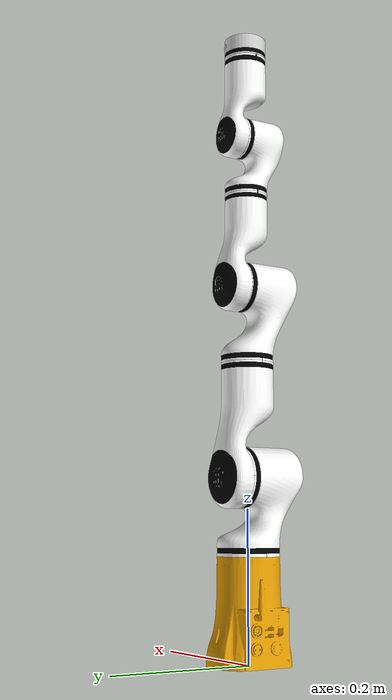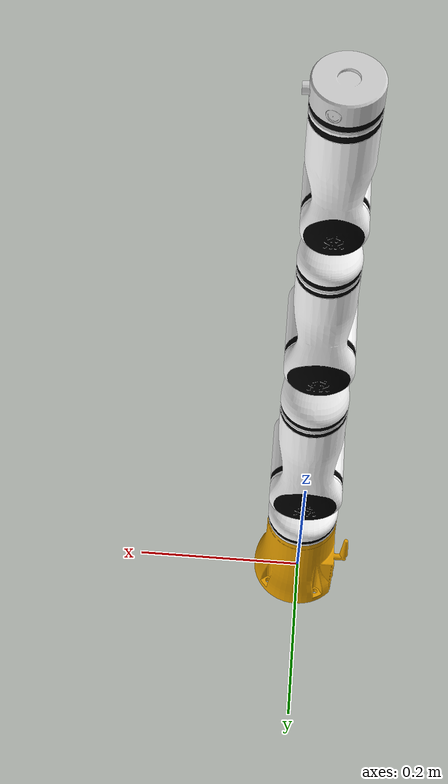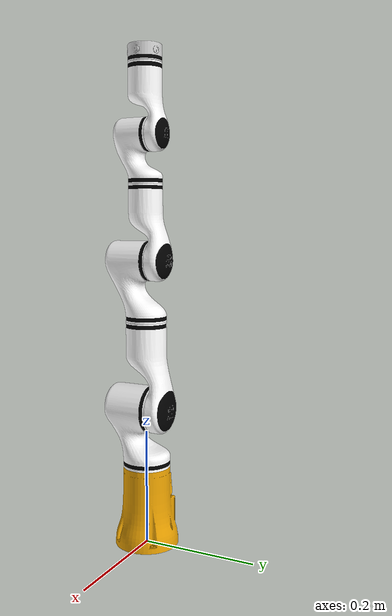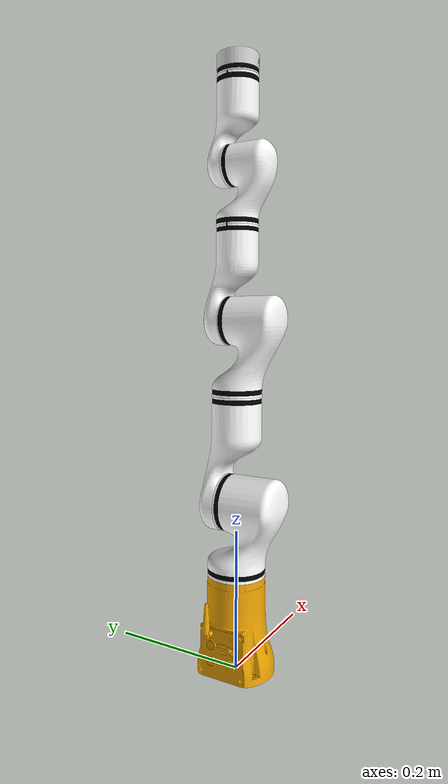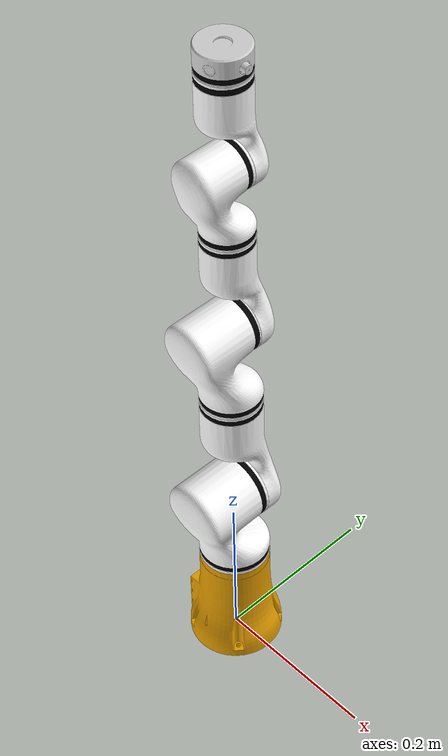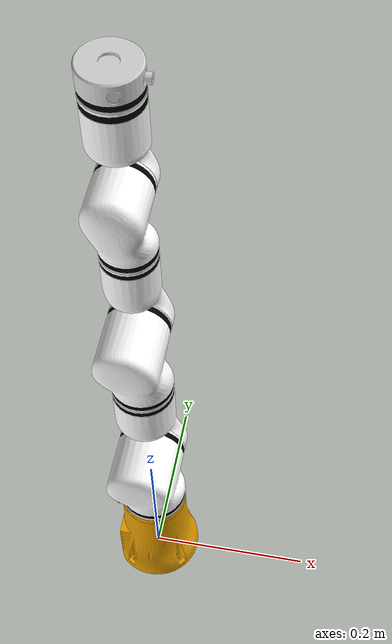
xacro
<?xml version='1.0' encoding='utf-8'?>
<robot name="rm_75_description">
  <link name="base_link">
    <inertial>
      <origin rpy="0 0 0" xyz="0.00049987 5.2709E-05 0.060019" />
      <mass value="1.862" />
      <inertia ixx="0.0017232" ixy="-3.1058E-06" ixz="-3.7924E-05" iyy="0.0017051" iyz="1.3691E-06" izz="0.00090158" />
    </inertial>
    <collision>
      <origin rpy="0 0 0" xyz="0 0 0" />
      <geometry>
        <mesh filename="package://rm_description/meshes/rm_75_arm/base_link.STL" />
      </geometry>
    </collision>
    <visual>
      <origin xyz="0 0 0" rpy="0 0 0" />
      <geometry>
        <mesh filename="package://rm_description/meshes/dae/base/base_link_75.dae" />
      </geometry>
    </visual>
  </link>
  <link name="Link1">
    <inertial>
      <origin rpy="0 0 0" xyz="0.000241 -0.013273 -0.00995" />
      <mass value="1.574" />
      <inertia ixx="0.002487573" ixy="0.000009663" ixz="-0.000007909" iyy="0.002321038" iyz="0.000179393" izz="0.001450554" />
    </inertial>
    <collision>
      <origin rpy="0 0 0" xyz="0 0 0" />
      <geometry>
        <mesh filename="package://rm_description/meshes/rm_75_arm/link1.STL" />
      </geometry>
    </collision>
    <visual>
      <origin xyz="0 0 0" rpy="0 0 0" />
      <geometry>
        <mesh filename="package://rm_description/meshes/dae/rm75/link_1.dae" />
      </geometry>
    </visual>
  </link>
  <joint name="joint1" type="revolute">
    <origin rpy="0 0 0" xyz="0 0 0.2405" />
    <parent link="base_link" />
    <child link="Link1" />
    <axis xyz="0 0 1" />
    <limit effort="60" lower="-3.106" upper="3.106" velocity="3.14" />
  </joint>
  <link name="Link2">
    <inertial>
      <origin rpy="0 0 0" xyz="-0.000357 -0.106789 0.005329" />
      <mass value="1.217" />
      <inertia ixx="0.003494121" ixy="0.000002921" ixz="-0.000005613" iyy="0.000892721" iyz="-0.000583884" izz="0.003444080" />
    </inertial>
    <collision>
      <origin rpy="0 0 0" xyz="0 0 0" />
      <geometry>
        <mesh filename="package://rm_description/meshes/rm_75_arm/link2.STL" />
      </geometry>
    </collision>
    <visual>
      <origin xyz="0 0 0" rpy="0 0 0" />
      <geometry>
        <mesh filename="package://rm_description/meshes/dae/rm75/link_2.dae" />
      </geometry>
    </visual>
  </link>
  <joint name="joint2" type="revolute">
    <origin rpy="-1.5708 0 0" xyz="0 0 0" />
    <parent link="Link1" />
    <child link="Link2" />
    <axis xyz="0 0 1" />
    <limit effort="60" lower="-2.2689" upper="2.2689" velocity="3.14" />
  </joint>
  <link name="Link3">
    <inertial>
      <origin rpy="0 0 0" xyz="0.000003 -0.01398 -0.011324" />
      <mass value="1.11" />
      <inertia ixx="0.001836663" ixy="0.000002259" ixz="-0.000004216" iyy="0.001498875" iyz="0.000037167" izz="0.001062545" />
    </inertial>
    <collision>
      <origin rpy="0 0 0" xyz="0 0 0" />
      <geometry>
        <mesh filename="package://rm_description/meshes/rm_75_arm/link3.STL" />
      </geometry>
    </collision>
    <visual>
      <origin xyz="0 0 0" rpy="0 0 0" />
      <geometry>
        <mesh filename="package://rm_description/meshes/dae/rm75/link_3.dae" />
      </geometry>
    </visual>
  </link>
  <joint name="joint3" type="revolute">
    <origin rpy="1.5708 0 0" xyz="0 -0.256 0" />
    <parent link="Link2" />
    <child link="Link3" />
    <axis xyz="0 0 1" />
    <limit effort="30" lower="-3.106" upper="3.106" velocity="3.14" />
  </joint>
  <link name="Link4">
    <inertial>
      <origin rpy="0 0 0" xyz="-0.000005 -0.084658 0.004747" />
      <mass value="0.685" />
      <inertia ixx="0.001282444" ixy="-0.000000551" ixz="-0.000000630" iyy="0.000373013" iyz="-0.000232084" izz="0.001256177" />
    </inertial>
    <collision>
      <origin rpy="0 0 0" xyz="0 0 0" />
      <geometry>
        <mesh filename="package://rm_description/meshes/rm_75_arm/link4.STL" />
      </geometry>
    </collision>
    <visual>
      <origin xyz="0 0 0" rpy="0 0 0" />
      <geometry>
        <mesh filename="package://rm_description/meshes/dae/rm75/link_4.dae" />
      </geometry>
    </visual>
  </link>
  <joint name="joint4" type="revolute">
    <origin rpy="-1.5708 0 0" xyz="0 0 0" />
    <parent link="Link3" />
    <child link="Link4" />
    <axis xyz="0 0 1" />
    <limit effort="30" lower="-2.356" upper="2.356" velocity="3.14" />
  </joint>
  <link name="Link5">
    <inertial>
      <origin rpy="0 0 0" xyz="0.000078 -0.012937 -0.008781" />
      <mass value="0.619" />
      <inertia ixx="0.000627336" ixy="0.000001636" ixz="-0.000001345" iyy="0.000542455" iyz="0.000034970" izz="0.000370291" />
    </inertial>
    <collision>
      <origin rpy="0 0 0" xyz="0 0 0" />
      <geometry>
        <mesh filename="package://rm_description/meshes/rm_75_arm/link5.STL" />
      </geometry>
    </collision>
    <visual>
      <origin xyz="0 0 0" rpy="0 0 0" />
      <geometry>
        <mesh filename="package://rm_description/meshes/dae/rm75/link_5.dae" />
      </geometry>
    </visual>
  </link>
  <joint name="joint5" type="revolute">
    <origin rpy="1.5708 0 0" xyz="0 -0.21 0" />
    <parent link="Link4" />
    <child link="Link5" />
    <axis xyz="0 0 1" />
    <limit effort="10" lower="-3.106" upper="3.106" velocity="3.14" />
  </joint>
  <link name="Link6">
    <inertial>
      <origin rpy="0 0 0" xyz="-0.000014 -0.078524 0.002819" />
      <mass value="0.602" />
      <inertia ixx="0.000780774" ixy="-0.000000121" ixz="-0.000000469" iyy="0.000289973" iyz="-0.000120513" izz="0.000763955" />
    </inertial>
    <collision>
      <origin rpy="0 0 0" xyz="0 0 0" />
      <geometry>
        <mesh filename="package://rm_description/meshes/rm_75_arm/link6.STL" />
      </geometry>
    </collision>
    <visual>
      <origin xyz="0 0 0" rpy="0 0 0" />
      <geometry>
        <mesh filename="package://rm_description/meshes/dae/rm75/link_6.dae" />
      </geometry>
    </visual>
  </link>
  <joint name="joint6" type="revolute">
    <origin rpy="-1.5708 0 0" xyz="0 0 0" />
    <parent link="Link5" />
    <child link="Link6" />
    <axis xyz="0 0 1" />
    <limit effort="10" lower="-2.234" upper="2.234" velocity="3.14" />
  </joint>
  <link name="Link7">
    <inertial>
      <origin rpy="0 0 0" xyz="0.001094 -0.000077 -0.010119" />
      <mass value="0.107" />
      <inertia ixx="0.000044123" ixy="-0.000000064" ixz="0.0000003" iyy="0.000035078" iyz="-0.000000029" izz="0.000065445" />
    </inertial>
    <collision>
      <origin rpy="0 0 0" xyz="0 0 0" />
      <geometry>
        <mesh filename="package://rm_description/meshes/rm_75_arm/link7.STL" />
      </geometry>
    </collision>
    <visual>
      <origin xyz="0 0 0" rpy="0 0 0" />
      <geometry>
        <mesh filename="package://rm_description/meshes/dae/rm75/link_7.dae" />
      </geometry>
    </visual>
  </link>
  <joint name="joint7" type="revolute">
    <origin rpy="1.5708 0 0" xyz="0 -0.144 0" />
    <parent link="Link6" />
    <child link="Link7" />
    <axis xyz="0 0 1" />
    <limit effort="10" lower="-6.28" upper="6.28" velocity="3.14" />
  </joint>
</robot>
